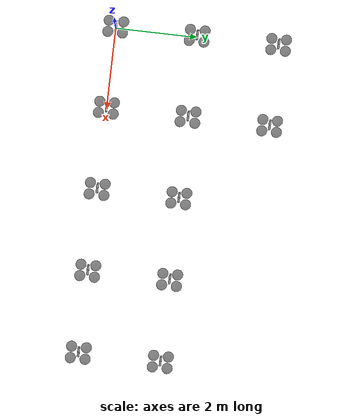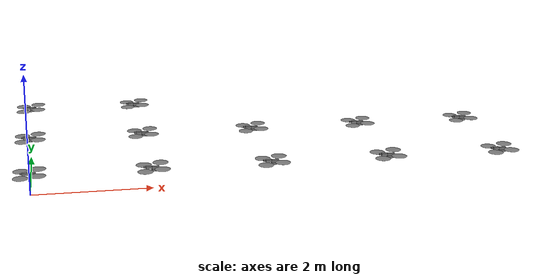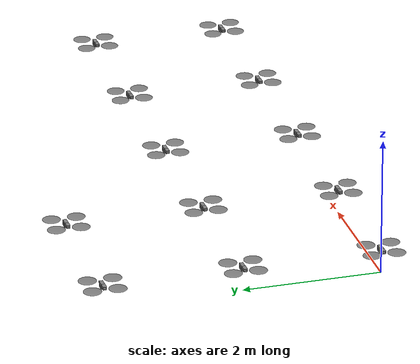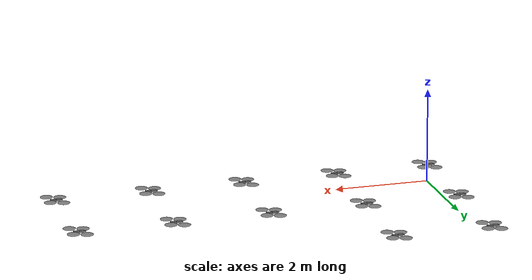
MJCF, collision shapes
<mujoco model="MultiDroneX2">
  <compiler autolimits="true" assetdir="assets"/>
  <option timestep="0.01" density="1.225" viscosity="1.8e-5"/>

  <default>
    <default class="x2">
        <geom mass="0"/>
        <motor ctrlrange="0 13"/>
        <mesh scale="0.01 0.01 0.01"/>
        <default class="visual">
          <geom group="2" type="mesh" contype="0" conaffinity="0"/>
        </default>
        <default class="collision">
          <geom group="3" type="box"/>
          <default class="rotor">
            <geom type="ellipsoid" size=".13 .13 .01"/>
          </default>
        </default>
        <site group="5"/>
    </default>
  </default>

  <asset>
    <texture type="2d" file="X2_lowpoly_texture_SpinningProps_1024.png"/>
    <material name="phong3SG" texture="X2_lowpoly_texture_SpinningProps_1024"/>
    <material name="invisible" rgba="0 0 0 0"/>
    <mesh class="x2" file="X2_lowpoly.obj"/>
  </asset>

  <worldbody>

    <body name="x2_0" pos="0.0 0.0 0.3" childclass="x2">
      <freejoint/>
      <site name="imu_0" pos="0 0 .02"/>
      <geom material="phong3SG" mesh="X2_lowpoly" class="visual" quat="0 0 1 1"/>
      <geom class="collision" size=".06 .027 .02" pos=".04 0 .02"/>
      <geom class="collision" size=".06 .027 .02" pos=".04 0 .06"/>
      <geom class="collision" size=".05 .027 .02" pos="-.07 0 .065"/>
      <geom class="collision" size=".023 .017 .01" pos="-.137 .008 .065" quat="1 0 0 1"/>
      <geom name="rotor1_0" class="rotor" pos="-.14 -.18 .05" mass=".25"/>
      <geom name="rotor2_0" class="rotor" pos="-.14 .18 .05" mass=".25"/>
      <geom name="rotor3_0" class="rotor" pos=".14 .18 .08" mass=".25"/>
      <geom name="rotor4_0" class="rotor" pos=".14 -.18 .08" mass=".25"/>
      <geom size=".16 .04 .02" pos="0 0 0.02" type="ellipsoid" mass=".325" class="visual" material="invisible"/>
      <site name="thrust1_0" pos="-.14 -.18 .05"/>
      <site name="thrust2_0" pos="-.14 .18 .05"/>
      <site name="thrust3_0" pos=".14 .18 .08"/>
      <site name="thrust4_0" pos=".14 -.18 .08"/>
    </body>

    <body name="x2_1" pos="2.0 0.0 0.3" childclass="x2">
      <freejoint/>
      <site name="imu_1" pos="0 0 .02"/>
      <geom material="phong3SG" mesh="X2_lowpoly" class="visual" quat="0 0 1 1"/>
      <geom class="collision" size=".06 .027 .02" pos=".04 0 .02"/>
      <geom class="collision" size=".06 .027 .02" pos=".04 0 .06"/>
      <geom class="collision" size=".05 .027 .02" pos="-.07 0 .065"/>
      <geom class="collision" size=".023 .017 .01" pos="-.137 .008 .065" quat="1 0 0 1"/>
      <geom name="rotor1_1" class="rotor" pos="-.14 -.18 .05" mass=".25"/>
      <geom name="rotor2_1" class="rotor" pos="-.14 .18 .05" mass=".25"/>
      <geom name="rotor3_1" class="rotor" pos=".14 .18 .08" mass=".25"/>
      <geom name="rotor4_1" class="rotor" pos=".14 -.18 .08" mass=".25"/>
      <geom size=".16 .04 .02" pos="0 0 0.02" type="ellipsoid" mass=".325" class="visual" material="invisible"/>
      <site name="thrust1_1" pos="-.14 -.18 .05"/>
      <site name="thrust2_1" pos="-.14 .18 .05"/>
      <site name="thrust3_1" pos=".14 .18 .08"/>
      <site name="thrust4_1" pos=".14 -.18 .08"/>
    </body>

    <body name="x2_2" pos="4.0 0.0 0.3" childclass="x2">
      <freejoint/>
      <site name="imu_2" pos="0 0 .02"/>
      <geom material="phong3SG" mesh="X2_lowpoly" class="visual" quat="0 0 1 1"/>
      <geom class="collision" size=".06 .027 .02" pos=".04 0 .02"/>
      <geom class="collision" size=".06 .027 .02" pos=".04 0 .06"/>
      <geom class="collision" size=".05 .027 .02" pos="-.07 0 .065"/>
      <geom class="collision" size=".023 .017 .01" pos="-.137 .008 .065" quat="1 0 0 1"/>
      <geom name="rotor1_2" class="rotor" pos="-.14 -.18 .05" mass=".25"/>
      <geom name="rotor2_2" class="rotor" pos="-.14 .18 .05" mass=".25"/>
      <geom name="rotor3_2" class="rotor" pos=".14 .18 .08" mass=".25"/>
      <geom name="rotor4_2" class="rotor" pos=".14 -.18 .08" mass=".25"/>
      <geom size=".16 .04 .02" pos="0 0 0.02" type="ellipsoid" mass=".325" class="visual" material="invisible"/>
      <site name="thrust1_2" pos="-.14 -.18 .05"/>
      <site name="thrust2_2" pos="-.14 .18 .05"/>
      <site name="thrust3_2" pos=".14 .18 .08"/>
      <site name="thrust4_2" pos=".14 -.18 .08"/>
    </body>

    <body name="x2_3" pos="6.0 0.0 0.3" childclass="x2">
      <freejoint/>
      <site name="imu_3" pos="0 0 .02"/>
      <geom material="phong3SG" mesh="X2_lowpoly" class="visual" quat="0 0 1 1"/>
      <geom class="collision" size=".06 .027 .02" pos=".04 0 .02"/>
      <geom class="collision" size=".06 .027 .02" pos=".04 0 .06"/>
      <geom class="collision" size=".05 .027 .02" pos="-.07 0 .065"/>
      <geom class="collision" size=".023 .017 .01" pos="-.137 .008 .065" quat="1 0 0 1"/>
      <geom name="rotor1_3" class="rotor" pos="-.14 -.18 .05" mass=".25"/>
      <geom name="rotor2_3" class="rotor" pos="-.14 .18 .05" mass=".25"/>
      <geom name="rotor3_3" class="rotor" pos=".14 .18 .08" mass=".25"/>
      <geom name="rotor4_3" class="rotor" pos=".14 -.18 .08" mass=".25"/>
      <geom size=".16 .04 .02" pos="0 0 0.02" type="ellipsoid" mass=".325" class="visual" material="invisible"/>
      <site name="thrust1_3" pos="-.14 -.18 .05"/>
      <site name="thrust2_3" pos="-.14 .18 .05"/>
      <site name="thrust3_3" pos=".14 .18 .08"/>
      <site name="thrust4_3" pos=".14 -.18 .08"/>
    </body>

    <body name="x2_4" pos="8.0 0.0 0.3" childclass="x2">
      <freejoint/>
      <site name="imu_4" pos="0 0 .02"/>
      <geom material="phong3SG" mesh="X2_lowpoly" class="visual" quat="0 0 1 1"/>
      <geom class="collision" size=".06 .027 .02" pos=".04 0 .02"/>
      <geom class="collision" size=".06 .027 .02" pos=".04 0 .06"/>
      <geom class="collision" size=".05 .027 .02" pos="-.07 0 .065"/>
      <geom class="collision" size=".023 .017 .01" pos="-.137 .008 .065" quat="1 0 0 1"/>
      <geom name="rotor1_4" class="rotor" pos="-.14 -.18 .05" mass=".25"/>
      <geom name="rotor2_4" class="rotor" pos="-.14 .18 .05" mass=".25"/>
      <geom name="rotor3_4" class="rotor" pos=".14 .18 .08" mass=".25"/>
      <geom name="rotor4_4" class="rotor" pos=".14 -.18 .08" mass=".25"/>
      <geom size=".16 .04 .02" pos="0 0 0.02" type="ellipsoid" mass=".325" class="visual" material="invisible"/>
      <site name="thrust1_4" pos="-.14 -.18 .05"/>
      <site name="thrust2_4" pos="-.14 .18 .05"/>
      <site name="thrust3_4" pos=".14 .18 .08"/>
      <site name="thrust4_4" pos=".14 -.18 .08"/>
    </body>

    <body name="x2_5" pos="0.0 2.0 0.3" childclass="x2">
      <freejoint/>
      <site name="imu_5" pos="0 0 .02"/>
      <geom material="phong3SG" mesh="X2_lowpoly" class="visual" quat="0 0 1 1"/>
      <geom class="collision" size=".06 .027 .02" pos=".04 0 .02"/>
      <geom class="collision" size=".06 .027 .02" pos=".04 0 .06"/>
      <geom class="collision" size=".05 .027 .02" pos="-.07 0 .065"/>
      <geom class="collision" size=".023 .017 .01" pos="-.137 .008 .065" quat="1 0 0 1"/>
      <geom name="rotor1_5" class="rotor" pos="-.14 -.18 .05" mass=".25"/>
      <geom name="rotor2_5" class="rotor" pos="-.14 .18 .05" mass=".25"/>
      <geom name="rotor3_5" class="rotor" pos=".14 .18 .08" mass=".25"/>
      <geom name="rotor4_5" class="rotor" pos=".14 -.18 .08" mass=".25"/>
      <geom size=".16 .04 .02" pos="0 0 0.02" type="ellipsoid" mass=".325" class="visual" material="invisible"/>
      <site name="thrust1_5" pos="-.14 -.18 .05"/>
      <site name="thrust2_5" pos="-.14 .18 .05"/>
      <site name="thrust3_5" pos=".14 .18 .08"/>
      <site name="thrust4_5" pos=".14 -.18 .08"/>
    </body>

    <body name="x2_6" pos="2.0 2.0 0.3" childclass="x2">
      <freejoint/>
      <site name="imu_6" pos="0 0 .02"/>
      <geom material="phong3SG" mesh="X2_lowpoly" class="visual" quat="0 0 1 1"/>
      <geom class="collision" size=".06 .027 .02" pos=".04 0 .02"/>
      <geom class="collision" size=".06 .027 .02" pos=".04 0 .06"/>
      <geom class="collision" size=".05 .027 .02" pos="-.07 0 .065"/>
      <geom class="collision" size=".023 .017 .01" pos="-.137 .008 .065" quat="1 0 0 1"/>
      <geom name="rotor1_6" class="rotor" pos="-.14 -.18 .05" mass=".25"/>
      <geom name="rotor2_6" class="rotor" pos="-.14 .18 .05" mass=".25"/>
      <geom name="rotor3_6" class="rotor" pos=".14 .18 .08" mass=".25"/>
      <geom name="rotor4_6" class="rotor" pos=".14 -.18 .08" mass=".25"/>
      <geom size=".16 .04 .02" pos="0 0 0.02" type="ellipsoid" mass=".325" class="visual" material="invisible"/>
      <site name="thrust1_6" pos="-.14 -.18 .05"/>
      <site name="thrust2_6" pos="-.14 .18 .05"/>
      <site name="thrust3_6" pos=".14 .18 .08"/>
      <site name="thrust4_6" pos=".14 -.18 .08"/>
    </body>

    <body name="x2_7" pos="4.0 2.0 0.3" childclass="x2">
      <freejoint/>
      <site name="imu_7" pos="0 0 .02"/>
      <geom material="phong3SG" mesh="X2_lowpoly" class="visual" quat="0 0 1 1"/>
      <geom class="collision" size=".06 .027 .02" pos=".04 0 .02"/>
      <geom class="collision" size=".06 .027 .02" pos=".04 0 .06"/>
      <geom class="collision" size=".05 .027 .02" pos="-.07 0 .065"/>
      <geom class="collision" size=".023 .017 .01" pos="-.137 .008 .065" quat="1 0 0 1"/>
      <geom name="rotor1_7" class="rotor" pos="-.14 -.18 .05" mass=".25"/>
      <geom name="rotor2_7" class="rotor" pos="-.14 .18 .05" mass=".25"/>
      <geom name="rotor3_7" class="rotor" pos=".14 .18 .08" mass=".25"/>
      <geom name="rotor4_7" class="rotor" pos=".14 -.18 .08" mass=".25"/>
      <geom size=".16 .04 .02" pos="0 0 0.02" type="ellipsoid" mass=".325" class="visual" material="invisible"/>
      <site name="thrust1_7" pos="-.14 -.18 .05"/>
      <site name="thrust2_7" pos="-.14 .18 .05"/>
      <site name="thrust3_7" pos=".14 .18 .08"/>
      <site name="thrust4_7" pos=".14 -.18 .08"/>
    </body>

    <body name="x2_8" pos="6.0 2.0 0.3" childclass="x2">
      <freejoint/>
      <site name="imu_8" pos="0 0 .02"/>
      <geom material="phong3SG" mesh="X2_lowpoly" class="visual" quat="0 0 1 1"/>
      <geom class="collision" size=".06 .027 .02" pos=".04 0 .02"/>
      <geom class="collision" size=".06 .027 .02" pos=".04 0 .06"/>
      <geom class="collision" size=".05 .027 .02" pos="-.07 0 .065"/>
      <geom class="collision" size=".023 .017 .01" pos="-.137 .008 .065" quat="1 0 0 1"/>
      <geom name="rotor1_8" class="rotor" pos="-.14 -.18 .05" mass=".25"/>
      <geom name="rotor2_8" class="rotor" pos="-.14 .18 .05" mass=".25"/>
      <geom name="rotor3_8" class="rotor" pos=".14 .18 .08" mass=".25"/>
      <geom name="rotor4_8" class="rotor" pos=".14 -.18 .08" mass=".25"/>
      <geom size=".16 .04 .02" pos="0 0 0.02" type="ellipsoid" mass=".325" class="visual" material="invisible"/>
      <site name="thrust1_8" pos="-.14 -.18 .05"/>
      <site name="thrust2_8" pos="-.14 .18 .05"/>
      <site name="thrust3_8" pos=".14 .18 .08"/>
      <site name="thrust4_8" pos=".14 -.18 .08"/>
    </body>

    <body name="x2_9" pos="8.0 2.0 0.3" childclass="x2">
      <freejoint/>
      <site name="imu_9" pos="0 0 .02"/>
      <geom material="phong3SG" mesh="X2_lowpoly" class="visual" quat="0 0 1 1"/>
      <geom class="collision" size=".06 .027 .02" pos=".04 0 .02"/>
      <geom class="collision" size=".06 .027 .02" pos=".04 0 .06"/>
      <geom class="collision" size=".05 .027 .02" pos="-.07 0 .065"/>
      <geom class="collision" size=".023 .017 .01" pos="-.137 .008 .065" quat="1 0 0 1"/>
      <geom name="rotor1_9" class="rotor" pos="-.14 -.18 .05" mass=".25"/>
      <geom name="rotor2_9" class="rotor" pos="-.14 .18 .05" mass=".25"/>
      <geom name="rotor3_9" class="rotor" pos=".14 .18 .08" mass=".25"/>
      <geom name="rotor4_9" class="rotor" pos=".14 -.18 .08" mass=".25"/>
      <geom size=".16 .04 .02" pos="0 0 0.02" type="ellipsoid" mass=".325" class="visual" material="invisible"/>
      <site name="thrust1_9" pos="-.14 -.18 .05"/>
      <site name="thrust2_9" pos="-.14 .18 .05"/>
      <site name="thrust3_9" pos=".14 .18 .08"/>
      <site name="thrust4_9" pos=".14 -.18 .08"/>
    </body>

    <body name="x2_10" pos="0.0 4.0 0.3" childclass="x2">
      <freejoint/>
      <site name="imu_10" pos="0 0 .02"/>
      <geom material="phong3SG" mesh="X2_lowpoly" class="visual" quat="0 0 1 1"/>
      <geom class="collision" size=".06 .027 .02" pos=".04 0 .02"/>
      <geom class="collision" size=".06 .027 .02" pos=".04 0 .06"/>
      <geom class="collision" size=".05 .027 .02" pos="-.07 0 .065"/>
      <geom class="collision" size=".023 .017 .01" pos="-.137 .008 .065" quat="1 0 0 1"/>
      <geom name="rotor1_10" class="rotor" pos="-.14 -.18 .05" mass=".25"/>
      <geom name="rotor2_10" class="rotor" pos="-.14 .18 .05" mass=".25"/>
      <geom name="rotor3_10" class="rotor" pos=".14 .18 .08" mass=".25"/>
      <geom name="rotor4_10" class="rotor" pos=".14 -.18 .08" mass=".25"/>
      <geom size=".16 .04 .02" pos="0 0 0.02" type="ellipsoid" mass=".325" class="visual" material="invisible"/>
      <site name="thrust1_10" pos="-.14 -.18 .05"/>
      <site name="thrust2_10" pos="-.14 .18 .05"/>
      <site name="thrust3_10" pos=".14 .18 .08"/>
      <site name="thrust4_10" pos=".14 -.18 .08"/>
    </body>

    <body name="x2_11" pos="2.0 4.0 0.3" childclass="x2">
      <freejoint/>
      <site name="imu_11" pos="0 0 .02"/>
      <geom material="phong3SG" mesh="X2_lowpoly" class="visual" quat="0 0 1 1"/>
      <geom class="collision" size=".06 .027 .02" pos=".04 0 .02"/>
      <geom class="collision" size=".06 .027 .02" pos=".04 0 .06"/>
      <geom class="collision" size=".05 .027 .02" pos="-.07 0 .065"/>
      <geom class="collision" size=".023 .017 .01" pos="-.137 .008 .065" quat="1 0 0 1"/>
      <geom name="rotor1_11" class="rotor" pos="-.14 -.18 .05" mass=".25"/>
      <geom name="rotor2_11" class="rotor" pos="-.14 .18 .05" mass=".25"/>
      <geom name="rotor3_11" class="rotor" pos=".14 .18 .08" mass=".25"/>
      <geom name="rotor4_11" class="rotor" pos=".14 -.18 .08" mass=".25"/>
      <geom size=".16 .04 .02" pos="0 0 0.02" type="ellipsoid" mass=".325" class="visual" material="invisible"/>
      <site name="thrust1_11" pos="-.14 -.18 .05"/>
      <site name="thrust2_11" pos="-.14 .18 .05"/>
      <site name="thrust3_11" pos=".14 .18 .08"/>
      <site name="thrust4_11" pos=".14 -.18 .08"/>
    </body>

  </worldbody>

  <actuator>

    <motor class="x2" name="thrust1_0" site="thrust1_0" gear="0 0 1 0 0 -.0201"/>
    <motor class="x2" name="thrust2_0" site="thrust2_0" gear="0 0 1 0 0  .0201"/>
    <motor class="x2" name="thrust3_0" site="thrust3_0" gear="0 0 1 0 0 -.0201"/>
    <motor class="x2" name="thrust4_0" site="thrust4_0" gear="0 0 1 0 0  .0201"/>

    <motor class="x2" name="thrust1_1" site="thrust1_1" gear="0 0 1 0 0 -.0201"/>
    <motor class="x2" name="thrust2_1" site="thrust2_1" gear="0 0 1 0 0  .0201"/>
    <motor class="x2" name="thrust3_1" site="thrust3_1" gear="0 0 1 0 0 -.0201"/>
    <motor class="x2" name="thrust4_1" site="thrust4_1" gear="0 0 1 0 0  .0201"/>

    <motor class="x2" name="thrust1_2" site="thrust1_2" gear="0 0 1 0 0 -.0201"/>
    <motor class="x2" name="thrust2_2" site="thrust2_2" gear="0 0 1 0 0  .0201"/>
    <motor class="x2" name="thrust3_2" site="thrust3_2" gear="0 0 1 0 0 -.0201"/>
    <motor class="x2" name="thrust4_2" site="thrust4_2" gear="0 0 1 0 0  .0201"/>

    <motor class="x2" name="thrust1_3" site="thrust1_3" gear="0 0 1 0 0 -.0201"/>
    <motor class="x2" name="thrust2_3" site="thrust2_3" gear="0 0 1 0 0  .0201"/>
    <motor class="x2" name="thrust3_3" site="thrust3_3" gear="0 0 1 0 0 -.0201"/>
    <motor class="x2" name="thrust4_3" site="thrust4_3" gear="0 0 1 0 0  .0201"/>

    <motor class="x2" name="thrust1_4" site="thrust1_4" gear="0 0 1 0 0 -.0201"/>
    <motor class="x2" name="thrust2_4" site="thrust2_4" gear="0 0 1 0 0  .0201"/>
    <motor class="x2" name="thrust3_4" site="thrust3_4" gear="0 0 1 0 0 -.0201"/>
    <motor class="x2" name="thrust4_4" site="thrust4_4" gear="0 0 1 0 0  .0201"/>

    <motor class="x2" name="thrust1_5" site="thrust1_5" gear="0 0 1 0 0 -.0201"/>
    <motor class="x2" name="thrust2_5" site="thrust2_5" gear="0 0 1 0 0  .0201"/>
    <motor class="x2" name="thrust3_5" site="thrust3_5" gear="0 0 1 0 0 -.0201"/>
    <motor class="x2" name="thrust4_5" site="thrust4_5" gear="0 0 1 0 0  .0201"/>

    <motor class="x2" name="thrust1_6" site="thrust1_6" gear="0 0 1 0 0 -.0201"/>
    <motor class="x2" name="thrust2_6" site="thrust2_6" gear="0 0 1 0 0  .0201"/>
    <motor class="x2" name="thrust3_6" site="thrust3_6" gear="0 0 1 0 0 -.0201"/>
    <motor class="x2" name="thrust4_6" site="thrust4_6" gear="0 0 1 0 0  .0201"/>

    <motor class="x2" name="thrust1_7" site="thrust1_7" gear="0 0 1 0 0 -.0201"/>
    <motor class="x2" name="thrust2_7" site="thrust2_7" gear="0 0 1 0 0  .0201"/>
    <motor class="x2" name="thrust3_7" site="thrust3_7" gear="0 0 1 0 0 -.0201"/>
    <motor class="x2" name="thrust4_7" site="thrust4_7" gear="0 0 1 0 0  .0201"/>

    <motor class="x2" name="thrust1_8" site="thrust1_8" gear="0 0 1 0 0 -.0201"/>
    <motor class="x2" name="thrust2_8" site="thrust2_8" gear="0 0 1 0 0  .0201"/>
    <motor class="x2" name="thrust3_8" site="thrust3_8" gear="0 0 1 0 0 -.0201"/>
    <motor class="x2" name="thrust4_8" site="thrust4_8" gear="0 0 1 0 0  .0201"/>

    <motor class="x2" name="thrust1_9" site="thrust1_9" gear="0 0 1 0 0 -.0201"/>
    <motor class="x2" name="thrust2_9" site="thrust2_9" gear="0 0 1 0 0  .0201"/>
    <motor class="x2" name="thrust3_9" site="thrust3_9" gear="0 0 1 0 0 -.0201"/>
    <motor class="x2" name="thrust4_9" site="thrust4_9" gear="0 0 1 0 0  .0201"/>

    <motor class="x2" name="thrust1_10" site="thrust1_10" gear="0 0 1 0 0 -.0201"/>
    <motor class="x2" name="thrust2_10" site="thrust2_10" gear="0 0 1 0 0  .0201"/>
    <motor class="x2" name="thrust3_10" site="thrust3_10" gear="0 0 1 0 0 -.0201"/>
    <motor class="x2" name="thrust4_10" site="thrust4_10" gear="0 0 1 0 0  .0201"/>

    <motor class="x2" name="thrust1_11" site="thrust1_11" gear="0 0 1 0 0 -.0201"/>
    <motor class="x2" name="thrust2_11" site="thrust2_11" gear="0 0 1 0 0  .0201"/>
    <motor class="x2" name="thrust3_11" site="thrust3_11" gear="0 0 1 0 0 -.0201"/>
    <motor class="x2" name="thrust4_11" site="thrust4_11" gear="0 0 1 0 0  .0201"/>

  </actuator>

  <sensor>

    <gyro name="gyro_0" site="imu_0"/>
    <accelerometer name="acc_0" site="imu_0"/>
    <framepos name="pos_0" objtype="site" objname="imu_0"/>
    <framequat name="quat_0" objtype="site" objname="imu_0"/>
    <framelinvel name="vel_0" objtype="site" objname="imu_0"/>

    <gyro name="gyro_1" site="imu_1"/>
    <accelerometer name="acc_1" site="imu_1"/>
    <framepos name="pos_1" objtype="site" objname="imu_1"/>
    <framequat name="quat_1" objtype="site" objname="imu_1"/>
    <framelinvel name="vel_1" objtype="site" objname="imu_1"/>

    <gyro name="gyro_2" site="imu_2"/>
    <accelerometer name="acc_2" site="imu_2"/>
    <framepos name="pos_2" objtype="site" objname="imu_2"/>
    <framequat name="quat_2" objtype="site" objname="imu_2"/>
    <framelinvel name="vel_2" objtype="site" objname="imu_2"/>

    <gyro name="gyro_3" site="imu_3"/>
    <accelerometer name="acc_3" site="imu_3"/>
    <framepos name="pos_3" objtype="site" objname="imu_3"/>
    <framequat name="quat_3" objtype="site" objname="imu_3"/>
    <framelinvel name="vel_3" objtype="site" objname="imu_3"/>

    <gyro name="gyro_4" site="imu_4"/>
    <accelerometer name="acc_4" site="imu_4"/>
    <framepos name="pos_4" objtype="site" objname="imu_4"/>
    <framequat name="quat_4" objtype="site" objname="imu_4"/>
    <framelinvel name="vel_4" objtype="site" objname="imu_4"/>

    <gyro name="gyro_5" site="imu_5"/>
    <accelerometer name="acc_5" site="imu_5"/>
    <framepos name="pos_5" objtype="site" objname="imu_5"/>
    <framequat name="quat_5" objtype="site" objname="imu_5"/>
    <framelinvel name="vel_5" objtype="site" objname="imu_5"/>

    <gyro name="gyro_6" site="imu_6"/>
    <accelerometer name="acc_6" site="imu_6"/>
    <framepos name="pos_6" objtype="site" objname="imu_6"/>
    <framequat name="quat_6" objtype="site" objname="imu_6"/>
    <framelinvel name="vel_6" objtype="site" objname="imu_6"/>

    <gyro name="gyro_7" site="imu_7"/>
    <accelerometer name="acc_7" site="imu_7"/>
    <framepos name="pos_7" objtype="site" objname="imu_7"/>
    <framequat name="quat_7" objtype="site" objname="imu_7"/>
    <framelinvel name="vel_7" objtype="site" objname="imu_7"/>

    <gyro name="gyro_8" site="imu_8"/>
    <accelerometer name="acc_8" site="imu_8"/>
    <framepos name="pos_8" objtype="site" objname="imu_8"/>
    <framequat name="quat_8" objtype="site" objname="imu_8"/>
    <framelinvel name="vel_8" objtype="site" objname="imu_8"/>

    <gyro name="gyro_9" site="imu_9"/>
    <accelerometer name="acc_9" site="imu_9"/>
    <framepos name="pos_9" objtype="site" objname="imu_9"/>
    <framequat name="quat_9" objtype="site" objname="imu_9"/>
    <framelinvel name="vel_9" objtype="site" objname="imu_9"/>

    <gyro name="gyro_10" site="imu_10"/>
    <accelerometer name="acc_10" site="imu_10"/>
    <framepos name="pos_10" objtype="site" objname="imu_10"/>
    <framequat name="quat_10" objtype="site" objname="imu_10"/>
    <framelinvel name="vel_10" objtype="site" objname="imu_10"/>

    <gyro name="gyro_11" site="imu_11"/>
    <accelerometer name="acc_11" site="imu_11"/>
    <framepos name="pos_11" objtype="site" objname="imu_11"/>
    <framequat name="quat_11" objtype="site" objname="imu_11"/>
    <framelinvel name="vel_11" objtype="site" objname="imu_11"/>

  </sensor>
</mujoco>
